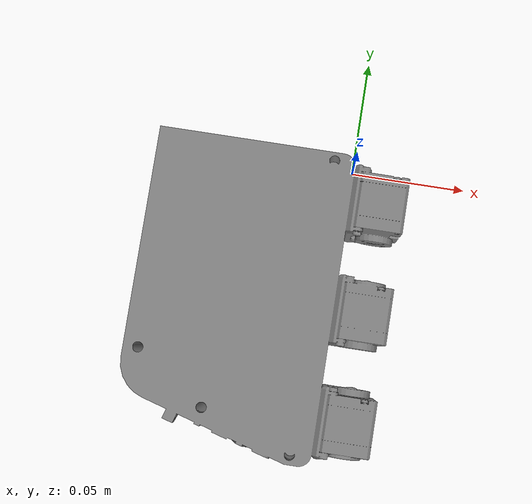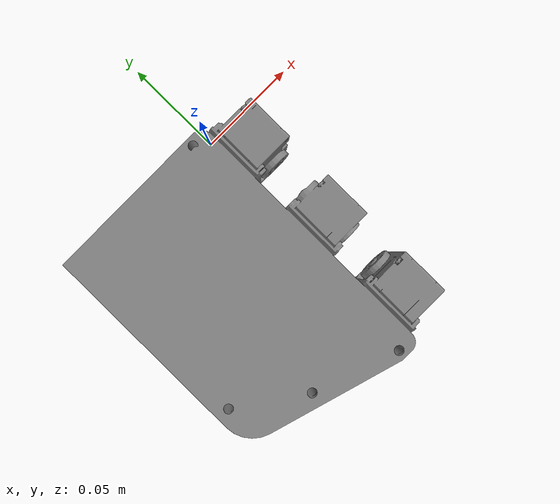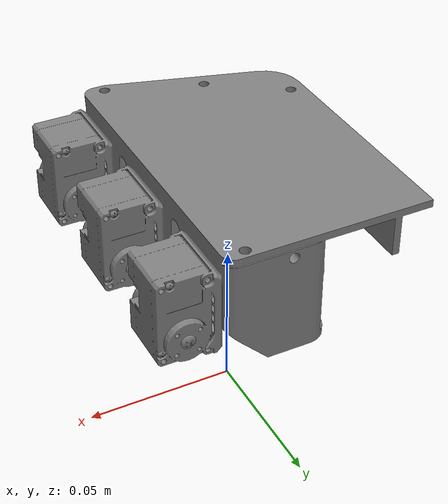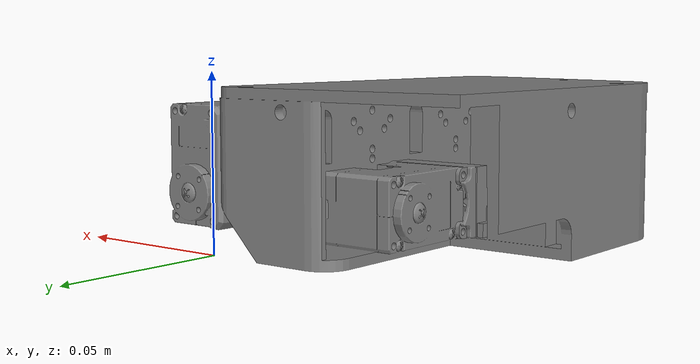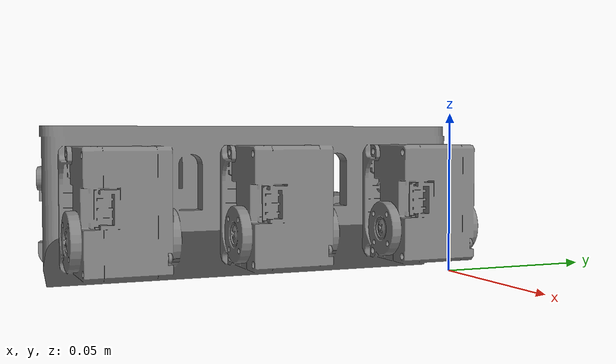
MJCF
<mujoco model="palm_lower">
  <default>
    <default class="visual">
      <geom group="2" type="mesh" contype="0" conaffinity="0"/>
    </default>
    <default class="collision">
      <geom group="3" type="mesh"/>
    </default>
  </default>
  <asset>
    <mesh file="palm_lower.obj"/>
    <mesh file="palm_lower_collision_0.obj"/>
    <mesh file="palm_lower_collision_1.obj"/>
    <mesh file="palm_lower_collision_2.obj"/>
    <mesh file="palm_lower_collision_3.obj"/>
    <mesh file="palm_lower_collision_4.obj"/>
    <mesh file="palm_lower_collision_5.obj"/>
    <mesh file="palm_lower_collision_6.obj"/>
    <mesh file="palm_lower_collision_7.obj"/>
  </asset>
  <worldbody>
    <body name="palm_lower">
      <geom mesh="palm_lower" class="visual"/>
      <geom mesh="palm_lower_collision_0" rgba="0.4262904428064316 0.7775927590522864 0.7986768156594668 1" class="collision"/>
      <geom mesh="palm_lower_collision_1" rgba="0.05476157694882067 0.07024591621019638 0.9208099192421157 1" class="collision"/>
      <geom mesh="palm_lower_collision_2" rgba="0.9985415602559679 0.15786781929759985 0.3769386061753204 1" class="collision"/>
      <geom mesh="palm_lower_collision_3" rgba="0.34724039822819086 0.008750515758675692 0.9237168693860475 1" class="collision"/>
      <geom mesh="palm_lower_collision_4" rgba="0.757185451606517 0.5412714671960085 0.810078408756113 1" class="collision"/>
      <geom mesh="palm_lower_collision_5" rgba="0.17525207814464905 0.793540486370845 0.11379585439374318 1" class="collision"/>
      <geom mesh="palm_lower_collision_6" rgba="0.24621606101869242 0.9644401801337575 0.16898889628959912 1" class="collision"/>
      <geom mesh="palm_lower_collision_7" rgba="0.41695859054973217 0.1648717954613026 0.9978711867050395 1" class="collision"/>
    </body>
  </worldbody>
</mujoco>
